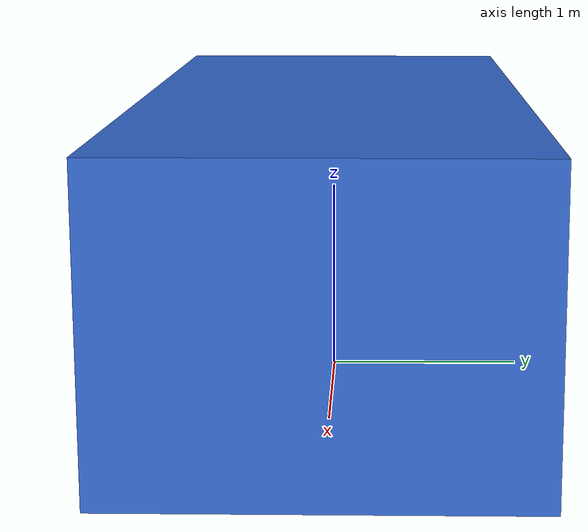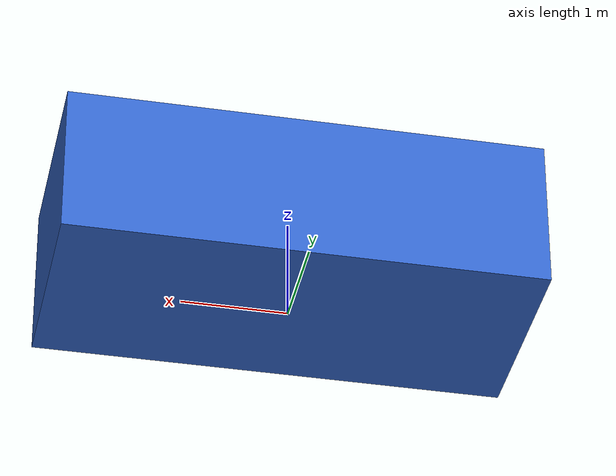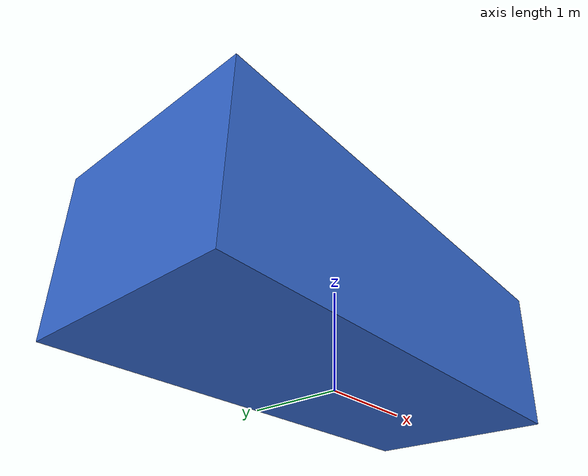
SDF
<?xml version="1.0"?>
<sdf version="1.6">
  <model name="parking_car">
    <static>true</static>
    <link name="body">
      <pose>0 0 0.75 0 0 0</pose>

      <collision name="collision">
        <geometry>
          <box>
            <size>4.5 2.0 1.5</size>
          </box>
        </geometry>
      </collision>

      <visual name="visual">
        <geometry>
          <box>
            <size>4.5 2.0 1.5</size>
          </box>
        </geometry>
        <material>
          <ambient>0.2 0.4 0.8 1</ambient>
          <diffuse>0.2 0.4 0.8 1</diffuse>
          <specular>0.1 0.1 0.1 1</specular>
        </material>
      </visual>

      <inertial>
        <mass>1500</mass>
        <inertia>
          <ixx>469</ixx>
          <iyy>3164</iyy>
          <izz>3164</izz>
          <ixy>0</ixy>
          <ixz>0</ixz>
          <iyz>0</iyz>
        </inertia>
      </inertial>
    </link>
  </model>
</sdf>
